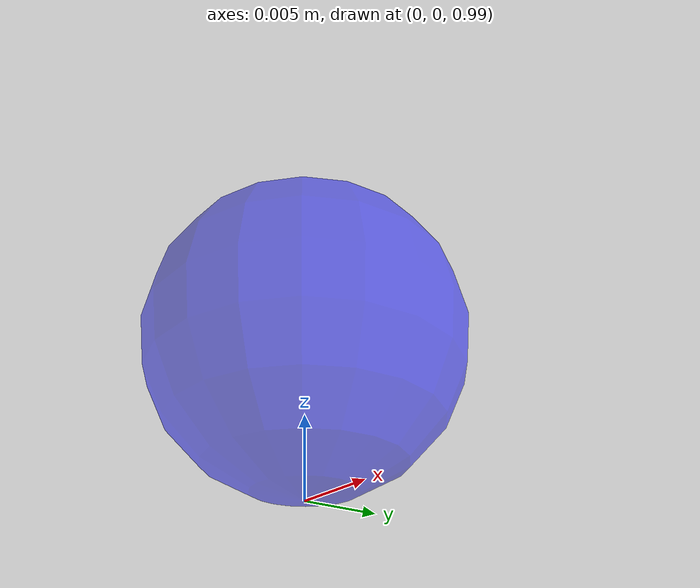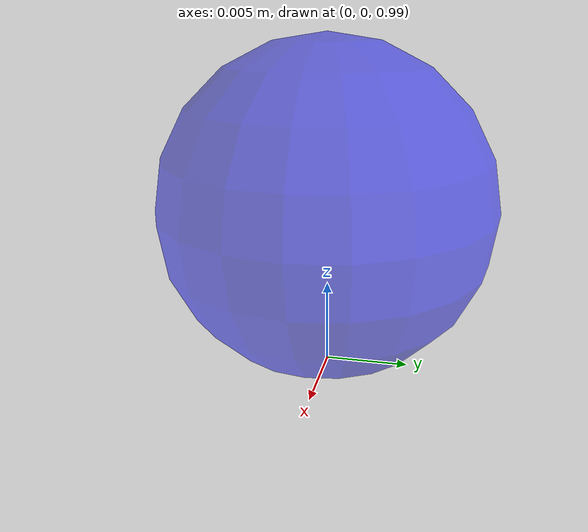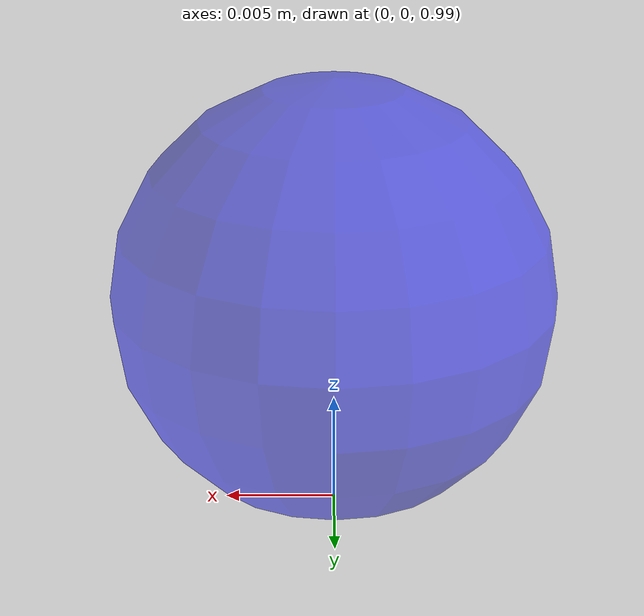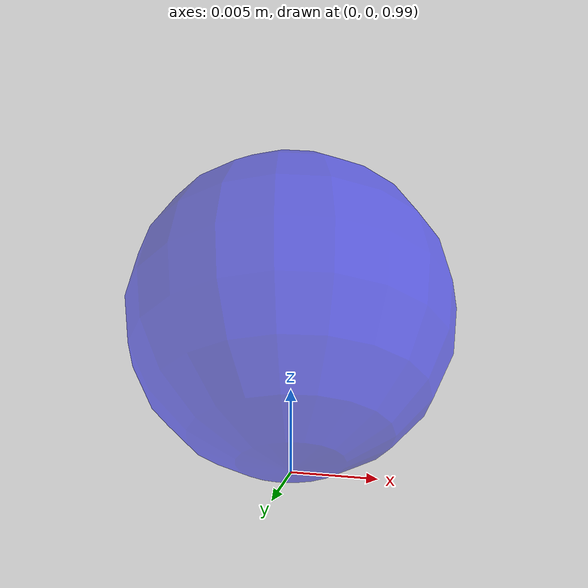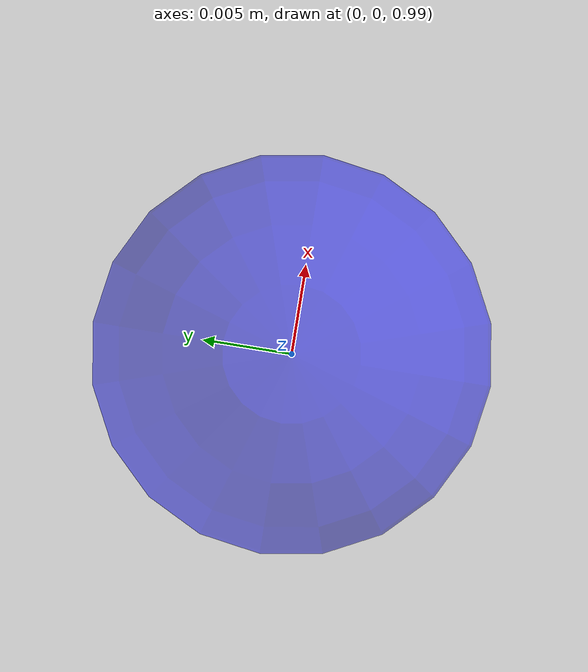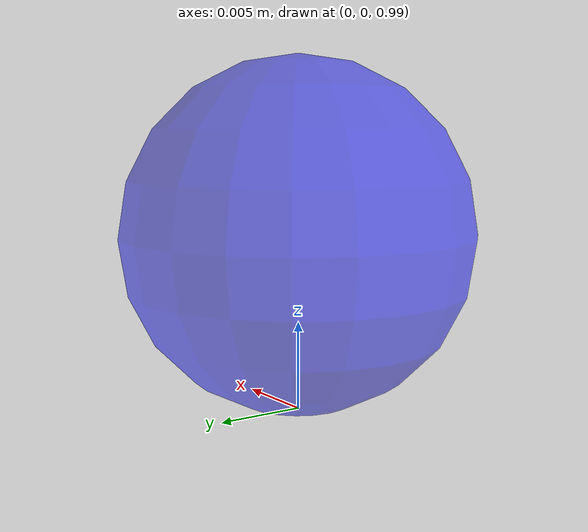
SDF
<?xml version="1.0" ?>
<sdf version="1.5">
  <model name="pathSphere">
    <static>true</static>
    <link name="link">

      <visual name="visual">
        <pose>0.0 0.0 1.0 0 0 0</pose>
        <geometry>
          <sphere>
              <radius>0.01</radius>
          </sphere>
        </geometry>

        <material>
            <ambient> 0.0 0.0 1.0 0.5 </ambient>
            <diffuse> 0.0 0.0 1.0 0.5 </diffuse>
        </material>

        <transparency>0.2</transparency>

      </visual>

    </link>
  </model>
</sdf>
